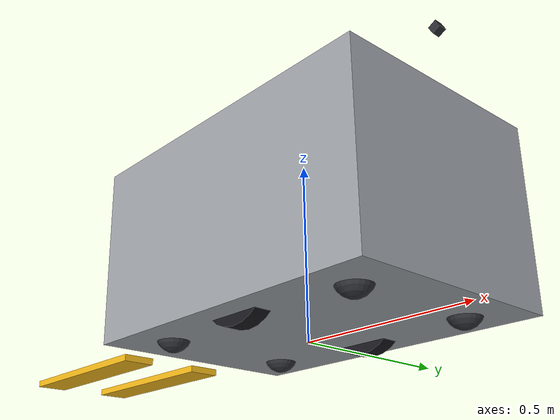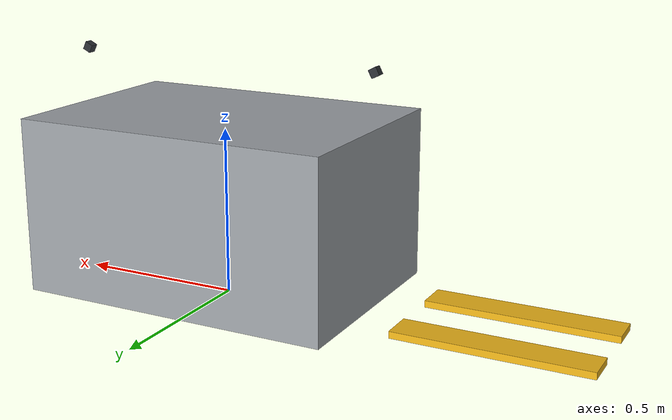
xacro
<?xml version="1.0"?>
<robot xmlns:xacro="http://www.ros.org/wiki/xacro" name="marco">
  <!-- Reuse the real robot geometry and frames; only simulation systems live here. -->
  <xacro:arg name="use_sim" default="true"/>
  <xacro:include filename="$(find marco_description)/urdf/properties.xacro"/>
  <!-- Fortress clamps rays when the 3 cm minimum range overlaps the body top. -->
  <xacro:property name="lidar_z" value="0.4845"/>
  <!-- Sim-only unobstructed camera mount; real CAD/calibration stays untouched. -->
  <xacro:property name="camera_front_z" value="0.58"/>
  <xacro:property name="camera_rear_z" value="0.58"/>
  <xacro:property name="camera_pitch" value="1.10"/>
  <xacro:include filename="$(find marco_description)/urdf/common.xacro"/>
  <xacro:include filename="$(find marco_description)/urdf/base.xacro"/>
  <xacro:include filename="$(find marco_description)/urdf/wheels.xacro"/>
  <xacro:include filename="$(find marco_description)/urdf/fork.xacro"/>
  <xacro:include filename="$(find marco_description)/urdf/sensors.xacro"/>

  <gazebo reference="left_wheel_link">
    <mu1>1.2</mu1><mu2>1.2</mu2>
  </gazebo>
  <gazebo reference="right_wheel_link">
    <mu1>1.2</mu1><mu2>1.2</mu2>
  </gazebo>
  <gazebo reference="front_left_caster_link"><mu1>0.02</mu1><mu2>0.02</mu2></gazebo>
  <gazebo reference="front_right_caster_link"><mu1>0.02</mu1><mu2>0.02</mu2></gazebo>
  <gazebo reference="rear_left_caster_link"><mu1>0.02</mu1><mu2>0.02</mu2></gazebo>
  <gazebo reference="rear_right_caster_link"><mu1>0.02</mu1><mu2>0.02</mu2></gazebo>

  <gazebo>
    <!-- Measurement-only world pose.  It is bridged on a non-/tf topic and
         converted to /ground_truth/odom by marco_localization. -->
    <plugin filename="ignition-gazebo-pose-publisher-system"
            name="gz::sim::systems::PosePublisher">
      <publish_link_pose>false</publish_link_pose>
      <publish_sensor_pose>false</publish_sensor_pose>
      <publish_collision_pose>false</publish_collision_pose>
      <publish_visual_pose>false</publish_visual_pose>
      <publish_nested_model_pose>false</publish_nested_model_pose>
      <publish_model_pose>true</publish_model_pose>
      <use_pose_vector_msg>true</use_pose_vector_msg>
      <static_publisher>false</static_publisher>
      <update_frequency>50</update_frequency>
      <topic>/ground_truth/raw</topic>
    </plugin>
    <plugin filename="ignition-gazebo-diff-drive-system"
            name="gz::sim::systems::DiffDrive">
      <left_joint>left_wheel_joint</left_joint>
      <right_joint>right_wheel_joint</right_joint>
      <wheel_separation>${wheel_separation}</wheel_separation>
      <wheel_radius>${wheel_radius}</wheel_radius>
      <topic>/cmd_vel</topic>
      <odom_topic>/wheel_odom</odom_topic>
      <tf_topic>/wheel_tf</tf_topic>
      <frame_id>odom</frame_id>
      <child_frame_id>base_footprint</child_frame_id>
      <odom_publish_frequency>50</odom_publish_frequency>
      <max_linear_acceleration>0.6</max_linear_acceleration>
      <min_linear_acceleration>-0.8</min_linear_acceleration>
      <max_angular_acceleration>1.2</max_angular_acceleration>
      <min_angular_acceleration>-1.2</min_angular_acceleration>
      <max_linear_velocity>0.50</max_linear_velocity>
      <min_linear_velocity>-0.25</min_linear_velocity>
      <max_angular_velocity>0.60</max_angular_velocity>
      <min_angular_velocity>-0.60</min_angular_velocity>
    </plugin>
    <plugin filename="ignition-gazebo-odometry-publisher-system"
            name="ignition::gazebo::systems::OdometryPublisher">
      <odom_frame>odom</odom_frame>
      <robot_base_frame>base_footprint</robot_base_frame>
      <dimensions>2</dimensions>
      <odom_publish_frequency>50</odom_publish_frequency>
      <odom_topic>/odom</odom_topic>
      <tf_topic>/tf</tf_topic>
    </plugin>
    <plugin filename="ignition-gazebo-joint-state-publisher-system"
            name="gz::sim::systems::JointStatePublisher">
      <joint_name>left_wheel_joint</joint_name>
      <joint_name>right_wheel_joint</joint_name>
      <joint_name>fork_lift_joint</joint_name>
    </plugin>
  </gazebo>

  <gazebo reference="laser_link">
    <sensor name="marco_lidar" type="gpu_lidar">
      <topic>/scan</topic>
      <gz_frame_id>laser_link</gz_frame_id>
      <update_rate>15</update_rate>
      <always_on>true</always_on>
      <visualize>true</visualize>
      <lidar>
        <scan>
          <horizontal>
            <samples>430</samples>
            <resolution>1</resolution>
            <min_angle>-${pi}</min_angle>
            <max_angle>${pi}</max_angle>
          </horizontal>
        </scan>
        <range><min>0.03</min><max>12.0</max><resolution>0.01</resolution></range>
      </lidar>
    </sensor>
  </gazebo>

  <gazebo reference="camera_front_link">
    <sensor name="front_camera" type="camera">
      <topic>/camera/image_raw</topic>
      <gz_frame_id>camera_front_optical_frame</gz_frame_id>
      <update_rate>15</update_rate>
      <always_on>true</always_on>
      <visualize>true</visualize>
      <camera>
        <horizontal_fov>1.3962634</horizontal_fov>
        <image><width>640</width><height>480</height><format>R8G8B8</format></image>
        <clip><near>0.03</near><far>20.0</far></clip>
        <camera_info_topic>/camera/camera_info</camera_info_topic>
      </camera>
    </sensor>
  </gazebo>

  <gazebo reference="camera_rear_link">
    <sensor name="rear_camera" type="camera">
      <topic>/camera_rear/image_raw</topic>
      <gz_frame_id>camera_rear_optical_frame</gz_frame_id>
      <update_rate>15</update_rate><always_on>true</always_on><visualize>true</visualize>
      <camera><horizontal_fov>1.3962634</horizontal_fov>
        <image><width>640</width><height>480</height><format>R8G8B8</format></image>
        <clip><near>0.03</near><far>20.0</far></clip>
        <camera_info_topic>/camera_rear/camera_info</camera_info_topic>
      </camera>
    </sensor>
  </gazebo>
</robot>

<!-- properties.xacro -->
<robot xmlns:xacro="http://www.ros.org/wiki/xacro">

  <!-- ==================== ARAC GOVDESI ==================== -->

  <!-- OLCULDU: z 11.6..1648.4 -> 1636.8 mm (catal ucundan govde arka yuzune) -->
  <xacro:property name="total_length"      value="1.637"/>
  <!-- OLCULDU: x 37.9..692.9 -> 655.0 mm -->
  <xacro:property name="body_width"        value="0.655"/>
  <!-- OLCULDU: zeminden en ust noktaya 544.5 mm -->
  <xacro:property name="total_height"      value="0.545"/>
  <!-- SAHA OLCUMU: sasi yerden 30 mm (eski CAD'de 21.6 mm). -->
  <xacro:property name="ground_clearance"  value="0.030"/>

  <!-- OLCULDU: sasi Taban-1 ve yan paneller z 696.9..1646.9 -> 950.0 mm.
       Kalan uzunluk direk (mast, z~620) ve catallara ait. -->
  <xacro:property name="body_length"       value="0.950"/>

  <!-- ==================== TAHRIK TEKERLEKLERI ==================== -->

  <!-- Nominal teker capi 250 mm; yuvarlanma yaricapi 125 mm. -->
  <xacro:property name="wheel_radius"      value="0.125"/>
  <!-- OLCULDU: 50.00 mm -->
  <xacro:property name="wheel_width"       value="0.050"/>

  <xacro:property name="wheel_separation"  value="0.460"/>

  <!--
    OLCULDU: 0.475 m. base_link tahrik aksinin ortasina yerlesir (donme
    merkezi). Sasi CAD'de z 696.9..1646.9, aks z=1171.95 -> aks sasinin tam
    ortasinda, arka yuzden 475.05 mm ileride.
  -->
  <xacro:property name="axle_from_rear"    value="0.475"/>

  <!-- ==================== SARHOS TEKERLEKLER ==================== -->

  <!-- TAHMINI: gorsel amacli; lokalizasyonu etkilemez -->
  <xacro:property name="caster_radius"     value="0.050"/>
  <xacro:property name="caster_width"      value="0.030"/>
  <!-- OLCULDU: aksa gore boylamsal mesafeler (isaret yon kararina bagli) -->
  <xacro:property name="caster_x_front"    value="0.340"/>
  <xacro:property name="caster_x_rear"     value="-0.320"/>
  <!-- OLCULDU: x=165.40 ve 565.40, govde ortasi 365.40 -> +/-200.0 mm.
       Tahrik tekerlerinden (+/-230) icte kaliyor. -->
  <xacro:property name="caster_y"          value="0.200"/>

  <!-- ==================== CATAL / LIFT ==================== -->

  <!-- OLCULDU: LdemirÇatal z 11.6..567.2 -> 555.58 mm -->
  <xacro:property name="fork_length"       value="0.556"/>

  <xacro:property name="fork_root_x"       value="-0.605"/>
  <!-- DOGRULANMIS: lift kaldirma yuksekligi 100 mm.
       CAD'deki dikey mil (Mil-1/-2) 400 mm kursa izin veriyor; sinir
       yazilim/limit switch tarafinda. -->
  <xacro:property name="fork_lift_stroke"  value="0.100"/>
  <!-- TAHMINI: L profilin sac kalinligi (STL'den kesitle ayrilmadi) -->
  <xacro:property name="fork_thickness"    value="0.020"/>
  <!-- OLCULDU: tek dis genisligi 100.00 mm -->
  <xacro:property name="fork_tine_width"   value="0.100"/>
  <!-- OLCULDU: dis merkezleri x=240.40 ve x=490.40 -> 250.00 mm -->
  <xacro:property name="fork_tine_spacing" value="0.250"/>

  <!-- ==================== SENSOR YERLESIMI ==================== -->

  <xacro:property name="lidar_x"           value="0.260"/>
  <xacro:property name="lidar_y"           value="0.000"/>
  <xacro:property name="lidar_z"           value="0.435"/>

  <xacro:property name="camera_front_x"     value="0.4765"/>
  <xacro:property name="camera_front_z"     value="0.0915"/>
  <xacro:property name="camera_rear_x"      value="-0.4765"/>
  <xacro:property name="camera_rear_z"      value="0.0915"/>
  <xacro:property name="camera_pitch"       value="0.7854"/>  <!-- 45 derece -->

  <!-- IMU araca eklendi. Konumu henuz fiziksel olarak olculmedigi icin bu
       degerler TAHMINIDIR; donme merkezine yakin yerlesim merkezkac ivme
       hatasini azaltir. -->
  <xacro:property name="imu_x"             value="0.000"/>
  <xacro:property name="imu_y"             value="0.000"/>
  <xacro:property name="imu_z"             value="0.150"/>

  <!-- ==================== KUTLE ==================== -->

  <!-- TAHMINI: raporda toplam kutle verilmemis. 3 mm celik sac sasi, aku,
       2 motor ve elektronik icin makul bir baslangic degeri.
       Sim dinamikleri icin onemli, gercek robotta tartilmali. -->
  <xacro:property name="body_mass"         value="70.0"/>
  <xacro:property name="wheel_mass"        value="2.5"/>
  <xacro:property name="caster_mass"       value="0.5"/>
  <xacro:property name="fork_mass"         value="8.0"/>

  <!-- ==================== KINEMATIK LIMITLER ==================== -->

  <!--
    DOGRULANMIS HESAP: motorlar 12 V'ta 80 RPM doner.
    80/60 tur/s * 2*pi*0.1 m = 0.838 m/s.
    Rapordaki 1.46 m/s degeri 24 V / 140 RPM icindir ve bu araca UYGULANMAZ.
  -->
  <xacro:property name="max_wheel_speed"   value="0.838"/>

</robot>

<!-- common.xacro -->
<robot xmlns:xacro="http://www.ros.org/wiki/xacro">

  <!-- Renkler -->
  <material name="marco_steel">  <color rgba="0.62 0.64 0.66 1.0"/></material>
  <material name="marco_yellow"> <color rgba="0.95 0.72 0.10 1.0"/></material>
  <material name="marco_dark">   <color rgba="0.18 0.19 0.21 1.0"/></material>
  <material name="marco_rubber"> <color rgba="0.10 0.10 0.12 1.0"/></material>
  <material name="marco_sensor"> <color rgba="0.10 0.45 0.75 1.0"/></material>

  <!-- Atalet makrolari. Homojen yogunluk varsayimi; gercek degerler
       CAD'den alinana kadar sim dinamikleri icin yeterli yaklasimdir. -->

  <xacro:macro name="box_inertia" params="m x y z">
    <inertial>
      <mass value="${m}"/>
      <inertia
        ixx="${m*(y*y + z*z)/12.0}" ixy="0.0" ixz="0.0"
        iyy="${m*(x*x + z*z)/12.0}" iyz="0.0"
        izz="${m*(x*x + y*y)/12.0}"/>
    </inertial>
  </xacro:macro>

  <!-- Ekseni y boyunca uzanan silindir (tekerlekler icin) -->
  <xacro:macro name="wheel_inertia" params="m r w">
    <inertial>
      <mass value="${m}"/>
      <inertia
        ixx="${m*(3.0*r*r + w*w)/12.0}" ixy="0.0" ixz="0.0"
        iyy="${m*r*r/2.0}"              iyz="0.0"
        izz="${m*(3.0*r*r + w*w)/12.0}"/>
    </inertial>
  </xacro:macro>

  <xacro:macro name="sphere_inertia" params="m r">
    <inertial>
      <mass value="${m}"/>
      <inertia
        ixx="${2.0*m*r*r/5.0}" ixy="0.0" ixz="0.0"
        iyy="${2.0*m*r*r/5.0}" iyz="0.0"
        izz="${2.0*m*r*r/5.0}"/>
    </inertial>
  </xacro:macro>

</robot>

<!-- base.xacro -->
<robot xmlns:xacro="http://www.ros.org/wiki/xacro">

  <xacro:property name="chassis_height"   value="${total_height - ground_clearance}"/>
  <xacro:property name="chassis_center_x" value="${-axle_from_rear + body_length/2.0}"/>
  <xacro:property name="chassis_center_z" value="${(ground_clearance - wheel_radius) + chassis_height/2.0}"/>

  <link name="base_footprint"/>

  <joint name="base_footprint_to_base_link" type="fixed">
    <parent link="base_footprint"/>
    <child  link="base_link"/>
    <origin xyz="0 0 ${wheel_radius}" rpy="0 0 0"/>
  </joint>

  <link name="base_link"/>

  <!-- Ana sasi: 3 mm lazer kesim bukumlu celik sac -->
  <joint name="base_link_to_chassis" type="fixed">
    <parent link="base_link"/>
    <child  link="chassis_link"/>
    <origin xyz="${chassis_center_x} 0 ${chassis_center_z}" rpy="0 0 0"/>
  </joint>

  <link name="chassis_link">
    <visual>
      <geometry><box size="${body_length} ${body_width} ${chassis_height}"/></geometry>
      <material name="marco_steel"/>
    </visual>
    <collision>
      <geometry><box size="${body_length} ${body_width} ${chassis_height}"/></geometry>
    </collision>
    <xacro:box_inertia m="${body_mass}" x="${body_length}" y="${body_width}" z="${chassis_height}"/>
  </link>

</robot>

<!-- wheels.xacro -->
<robot xmlns:xacro="http://www.ros.org/wiki/xacro">

  <xacro:macro name="drive_wheel" params="prefix reflect">
    <joint name="${prefix}_wheel_joint" type="continuous">
      <parent link="base_link"/>
      <child  link="${prefix}_wheel_link"/>
      <origin xyz="0 ${reflect * wheel_separation/2.0} 0" rpy="0 0 0"/>
      <axis xyz="0 1 0"/>
      <limit effort="100.0" velocity="${max_wheel_speed / wheel_radius}"/>
    </joint>

    <link name="${prefix}_wheel_link">
      <visual>
        <origin xyz="0 0 0" rpy="${pi/2.0} 0 0"/>
        <geometry><cylinder radius="${wheel_radius}" length="${wheel_width}"/></geometry>
        <material name="marco_rubber"/>
      </visual>
      <collision>
        <origin xyz="0 0 0" rpy="${pi/2.0} 0 0"/>
        <geometry><cylinder radius="${wheel_radius}" length="${wheel_width}"/></geometry>
      </collision>
      <xacro:wheel_inertia m="${wheel_mass}" r="${wheel_radius}" w="${wheel_width}"/>
    </link>
  </xacro:macro>

  <xacro:drive_wheel prefix="left"  reflect="1"/>
  <xacro:drive_wheel prefix="right" reflect="-1"/>

  <xacro:macro name="caster" params="prefix x y">
    <joint name="${prefix}_caster_joint" type="fixed">
      <parent link="base_link"/>
      <child  link="${prefix}_caster_link"/>
      <origin xyz="${x} ${y} ${caster_radius - wheel_radius}" rpy="0 0 0"/>
    </joint>

    <link name="${prefix}_caster_link">
      <visual>
        <geometry><sphere radius="${caster_radius}"/></geometry>
        <material name="marco_dark"/>
      </visual>
      <collision>
        <geometry><sphere radius="${caster_radius}"/></geometry>
      </collision>
      <xacro:sphere_inertia m="${caster_mass}" r="${caster_radius}"/>
    </link>
  </xacro:macro>

  <xacro:caster prefix="front_left"  x="${caster_x_front}" y="${ caster_y}"/>
  <xacro:caster prefix="front_right" x="${caster_x_front}" y="${-caster_y}"/>
  <xacro:caster prefix="rear_left"   x="${caster_x_rear}"  y="${ caster_y}"/>
  <xacro:caster prefix="rear_right"  x="${caster_x_rear}"  y="${-caster_y}"/>

</robot>

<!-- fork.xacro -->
<robot xmlns:xacro="http://www.ros.org/wiki/xacro">

  <xacro:property name="fork_down_z" value="${ground_clearance - wheel_radius}"/>
  <!-- Dislerin merkezi: kok noktasindan yarim uzunluk geride -->
  <xacro:property name="tine_center_x" value="${-fork_length/2.0}"/>

  <joint name="fork_lift_joint" type="prismatic">
    <parent link="base_link"/>
    <child  link="fork_link"/>
    <origin xyz="${fork_root_x} 0 ${fork_down_z}" rpy="0 0 0"/>
    <axis xyz="0 0 1"/>
    <limit lower="0.0" upper="${fork_lift_stroke}" effort="200.0" velocity="0.05"/>
  </joint>

  <link name="fork_link">
    <xacro:box_inertia m="${fork_mass}" x="${fork_length}" y="${fork_tine_spacing + fork_tine_width}" z="${fork_thickness}"/>

    <!-- Sol catal disi -->
    <visual>
      <origin xyz="${tine_center_x} ${ fork_tine_spacing/2.0} ${fork_thickness/2.0}" rpy="0 0 0"/>
      <geometry><box size="${fork_length} ${fork_tine_width} ${fork_thickness}"/></geometry>
      <material name="marco_yellow"/>
    </visual>
    <collision>
      <origin xyz="${tine_center_x} ${ fork_tine_spacing/2.0} ${fork_thickness/2.0}" rpy="0 0 0"/>
      <geometry><box size="${fork_length} ${fork_tine_width} ${fork_thickness}"/></geometry>
    </collision>

    <!-- Sag catal disi -->
    <visual>
      <origin xyz="${tine_center_x} ${-fork_tine_spacing/2.0} ${fork_thickness/2.0}" rpy="0 0 0"/>
      <geometry><box size="${fork_length} ${fork_tine_width} ${fork_thickness}"/></geometry>
      <material name="marco_yellow"/>
    </visual>
    <collision>
      <origin xyz="${tine_center_x} ${-fork_tine_spacing/2.0} ${fork_thickness/2.0}" rpy="0 0 0"/>
      <geometry><box size="${fork_length} ${fork_tine_width} ${fork_thickness}"/></geometry>
    </collision>
  </link>

</robot>

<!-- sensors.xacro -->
<robot xmlns:xacro="http://www.ros.org/wiki/xacro">

  <joint name="base_link_to_laser" type="fixed">
    <parent link="base_link"/>
    <child  link="laser_link"/>
    <origin xyz="${lidar_x} ${lidar_y} ${lidar_z}" rpy="0 0 ${pi}"/>
  </joint>

  <link name="laser_link">
    <!-- GPU lidar would see its own housing at range_min in simulation. -->
    <xacro:unless value="$(arg use_sim)">
      <visual>
        <geometry><cylinder radius="0.019" length="0.033"/></geometry>
        <material name="marco_sensor"/>
      </visual>
      <collision>
        <geometry><cylinder radius="0.019" length="0.033"/></geometry>
      </collision>
    </xacro:unless>
    <xacro:box_inertia m="0.05" x="0.038" y="0.038" z="0.033"/>
  </link>

  <xacro:macro name="floor_camera" params="name x z yaw">
    <joint name="base_link_to_${name}" type="fixed">
      <parent link="base_link"/>
      <child  link="${name}_link"/>
      <origin xyz="${x} 0 ${z}" rpy="0 ${camera_pitch} ${yaw}"/>
    </joint>

    <link name="${name}_link">
      <visual>
        <geometry><box size="0.025 0.025 0.025"/></geometry>
        <material name="marco_dark"/>
      </visual>
      <xacro:box_inertia m="0.03" x="0.025" y="0.025" z="0.025"/>
    </link>

    <!-- Goruntu isleme ekibinin bekledigi optik cerceve: z ileri, x saga, y asagi -->
    <joint name="${name}_to_optical" type="fixed">
      <parent link="${name}_link"/>
      <child  link="${name}_optical_frame"/>
      <origin xyz="0 0 0" rpy="${-pi/2.0} 0 ${-pi/2.0}"/>
    </joint>
    <link name="${name}_optical_frame"/>
  </xacro:macro>

  <xacro:floor_camera name="camera_front" x="${camera_front_x}" z="${camera_front_z}" yaw="0"/>
  <xacro:floor_camera name="camera_rear"  x="${camera_rear_x}"  z="${camera_rear_z}"  yaw="${pi}"/>

  <!--
    IMU cercevesi. Donanimda HENUZ YOK; cerceve simdiden tanimlanmistir ki
    IMU eklendiginde EKF konfigurasyonu disinda hicbir sey degismesin.
  -->
  <joint name="base_link_to_imu" type="fixed">
    <parent link="base_link"/>
    <child  link="imu_link"/>
    <origin xyz="${imu_x} ${imu_y} ${imu_z}" rpy="0 0 0"/>
  </joint>

  <link name="imu_link"/>

</robot>
